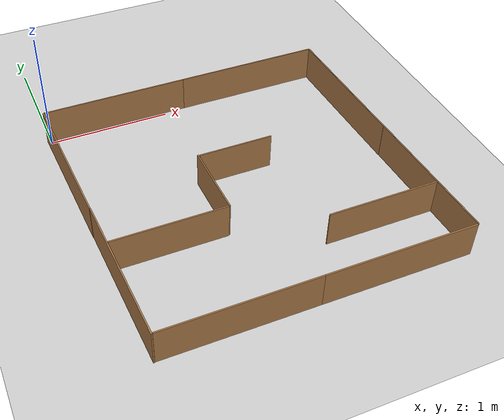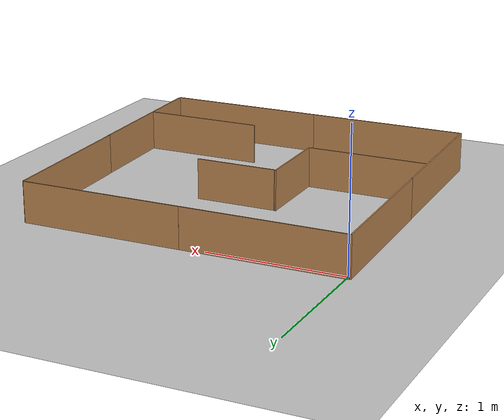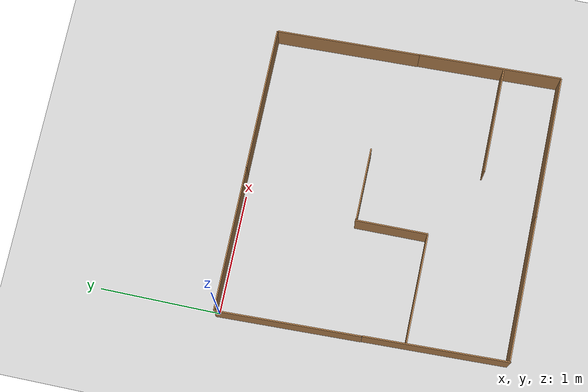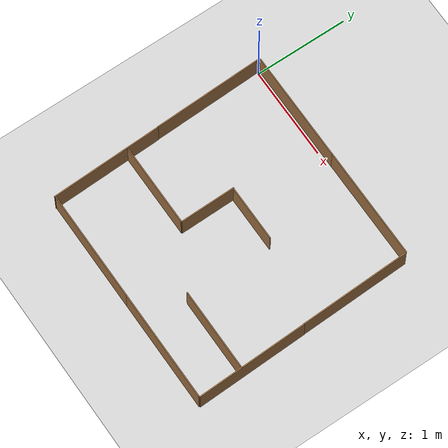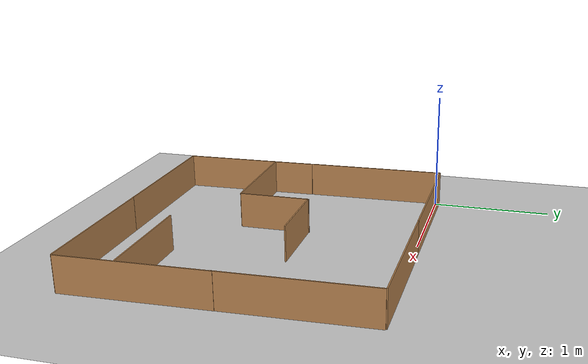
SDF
<sdf version="1.7">
 <world name="default">
  <light name="sun" type="directional">
   <pose>0 0 10 0 -0 0</pose>
   <diffuse>0.8 0.8 0.8 1</diffuse>
   <specular>0.2 0.2 0.2 1</specular>
   <attenuation>
    <range>1000</range>
    <constant>0.9</constant>
    <linear>0.01</linear>
    <quadratic>0.001</quadratic>
   </attenuation>
   <direction>-0.5 0.1 -0.9</direction>
   <spot><inner_angle>0</inner_angle><outer_angle>0</outer_angle><falloff>0</falloff></spot>
  </light>
  <model name="ground_plane">
   <static>1</static>
   <link name="link">
    <collision name="collision">
     <geometry><plane><normal>0 0 1</normal><size>100 100</size></plane></geometry>
     <surface>
      <contact><collide_bitmask>65535</collide_bitmask></contact>
      <friction><ode><mu>100</mu><mu2>50</mu2></ode></friction>
     </surface>
    </collision>
    <visual name="visual">
     <cast_shadows>0</cast_shadows>
     <geometry><plane><normal>0 0 1</normal><size>100 100</size></plane></geometry>
     <material>
      <script><uri>file://media/materials/scripts/gazebo.material</uri><name>Gazebo/Grey</name></script>
     </material>
    </visual>
   </link>
  </model>
  <gravity>0 0 -9.8</gravity>
  <magnetic_field>6e-06 2.3e-05 -4.2e-05</magnetic_field>
  <atmosphere type="adiabatic"/>
  <physics type="ode">
   <max_step_size>0.001</max_step_size>
   <real_time_factor>1</real_time_factor>
   <real_time_update_rate>1000</real_time_update_rate>
  </physics>
  <scene><ambient>0.4 0.4 0.4 1</ambient><background>0.7 0.7 0.7 1</background><shadows>1</shadows></scene>
  <spherical_coordinates>
   <surface_model>EARTH_WGS84</surface_model>
   <latitude_deg>0</latitude_deg>
   <longitude_deg>0</longitude_deg>
   <elevation>0</elevation>
   <heading_deg>0</heading_deg>
  </spherical_coordinates>
  <model name="Fusta12">
   <pose>0.832836 1.03045 0 0 -0 0</pose>
   <link name="Wall_0">
    <collision name="Wall_0_Collision">
     <geometry><box><size>1.2 0.01 0.3</size></box></geometry>
     <pose>0 0 0.15 0 -0 0</pose>
    </collision>
    <visual name="Wall_0_Visual">
     <pose>0 0 0.15 0 -0 0</pose>
     <geometry><box><size>1.2 0.01 0.3</size></box></geometry>
     <material>
      <script><uri>file://media/materials/scripts/gazebo.material</uri><name>Gazebo/Wood</name></script>
      <ambient>1 1 1 1</ambient>
     </material>
     <meta><layer>0</layer></meta>
    </visual>
    <pose>-0.2525 -1.0025 0 0 -0 0</pose>
   </link>
   <static>1</static>
  </model>
  <model name="Fusta12_0">
   <pose>1.00387 -0.793239 0 0 0 -1.53878</pose>
   <link name="Wall_0">
    <collision name="Wall_0_Collision">
     <geometry><box><size>1.2 0.01 0.3</size></box></geometry>
     <pose>0 0 0.15 0 -0 0</pose>
    </collision>
    <visual name="Wall_0_Visual">
     <pose>0 0 0.15 0 -0 0</pose>
     <geometry><box><size>1.2 0.01 0.3</size></box></geometry>
     <material>
      <script><uri>file://media/materials/scripts/gazebo.material</uri><name>Gazebo/Wood</name></script>
      <ambient>1 1 1 1</ambient>
     </material>
     <meta><layer>0</layer></meta>
    </visual>
    <pose>-0.2525 -1.0025 0 0 -0 0</pose>
   </link>
   <static>1</static>
  </model>
  <model name="Fusta12_1">
   <pose>2.03238 1.03104 0 0 -0 0</pose>
   <link name="Wall_0">
    <collision name="Wall_0_Collision">
     <geometry><box><size>1.2 0.01 0.3</size></box></geometry>
     <pose>0 0 0.15 0 -0 0</pose>
    </collision>
    <visual name="Wall_0_Visual">
     <pose>0 0 0.15 0 -0 0</pose>
     <geometry><box><size>1.2 0.01 0.3</size></box></geometry>
     <material>
      <script><uri>file://media/materials/scripts/gazebo.material</uri><name>Gazebo/Wood</name></script>
      <ambient>1 1 1 1</ambient>
     </material>
     <meta><layer>0</layer></meta>
    </visual>
    <pose>-0.2525 -1.0025 0 0 -0 0</pose>
   </link>
   <static>1</static>
  </model>
  <model name="Fusta12_0_clone">
   <pose>1.04499 -1.99449 0 0 0 -1.53878</pose>
   <link name="Wall_0">
    <collision name="Wall_0_Collision">
     <geometry><box><size>1.2 0.01 0.3</size></box></geometry>
     <pose>0 0 0.15 0 -0 0</pose>
    </collision>
    <visual name="Wall_0_Visual">
     <pose>0 0 0.15 0 -0 0</pose>
     <geometry><box><size>1.2 0.01 0.3</size></box></geometry>
     <material>
      <script><uri>file://media/materials/scripts/gazebo.material</uri><name>Gazebo/Wood</name></script>
      <ambient>1 1 1 1</ambient>
     </material>
     <meta><layer>0</layer></meta>
    </visual>
    <pose>-0.2525 -1.0025 0 0 -0 0</pose>
   </link>
   <static>1</static>
  </model>
  <model name="Fusta12_0_clone_0">
   <pose>3.41257 -0.794934 0 0 0 -1.53878</pose>
   <link name="Wall_0">
    <collision name="Wall_0_Collision">
     <geometry><box><size>1.2 0.01 0.3</size></box></geometry>
     <pose>0 0 0.15 0 -0 0</pose>
    </collision>
    <visual name="Wall_0_Visual">
     <pose>0 0 0.15 0 -0 0</pose>
     <geometry><box><size>1.2 0.01 0.3</size></box></geometry>
     <material>
      <script><uri>file://media/materials/scripts/gazebo.material</uri><name>Gazebo/Wood</name></script>
      <ambient>1 1 1 1</ambient>
     </material>
     <meta><layer>0</layer></meta>
    </visual>
    <pose>-0.2525 -1.0025 0 0 -0 0</pose>
   </link>
   <static>1</static>
  </model>
  <model name="Fusta12_0_clone_1">
   <pose>3.45254 -1.98209 0 0 0 -1.53878</pose>
   <link name="Wall_0">
    <collision name="Wall_0_Collision">
     <geometry><box><size>1.2 0.01 0.3</size></box></geometry>
     <pose>0 0 0.15 0 -0 0</pose>
    </collision>
    <visual name="Wall_0_Visual">
     <pose>0 0 0.15 0 -0 0</pose>
     <geometry><box><size>1.2 0.01 0.3</size></box></geometry>
     <material>
      <script><uri>file://media/materials/scripts/gazebo.material</uri><name>Gazebo/Wood</name></script>
      <ambient>1 1 1 1</ambient>
     </material>
     <meta><layer>0</layer></meta>
    </visual>
    <pose>-0.2525 -1.0025 0 0 -0 0</pose>
   </link>
   <static>1</static>
  </model>
  <model name="Fusta12_clone">
   <pose>2.10915 -1.36317 0 0 -0 0</pose>
   <link name="Wall_0">
    <collision name="Wall_0_Collision">
     <geometry><box><size>1.2 0.01 0.3</size></box></geometry>
     <pose>0 0 0.15 0 -0 0</pose>
    </collision>
    <visual name="Wall_0_Visual">
     <pose>0 0 0.15 0 -0 0</pose>
     <geometry><box><size>1.2 0.01 0.3</size></box></geometry>
     <material>
      <script><uri>file://media/materials/scripts/gazebo.material</uri><name>Gazebo/Wood</name></script>
      <ambient>1 1 1 1</ambient>
     </material>
     <meta><layer>0</layer></meta>
    </visual>
    <pose>-0.2525 -1.0025 0 0 -0 0</pose>
   </link>
   <static>1</static>
  </model>
  <model name="Fusta12_clone_0">
   <pose>0.912903 -1.36304 0 0 -0 0</pose>
   <link name="Wall_0">
    <collision name="Wall_0_Collision">
     <geometry><box><size>1.2 0.01 0.3</size></box></geometry>
     <pose>0 0 0.15 0 -0 0</pose>
    </collision>
    <visual name="Wall_0_Visual">
     <pose>0 0 0.15 0 -0 0</pose>
     <geometry><box><size>1.2 0.01 0.3</size></box></geometry>
     <material>
      <script><uri>file://media/materials/scripts/gazebo.material</uri><name>Gazebo/Wood</name></script>
      <ambient>1 1 1 1</ambient>
     </material>
     <meta><layer>0</layer></meta>
    </visual>
    <pose>-0.2525 -1.0025 0 0 -0 0</pose>
   </link>
   <static>1</static>
  </model>
  <model name="Fusta09">
   <pose>0.526767 -0.464527 0 0 -0 0</pose>
   <link name="Wall_2">
    <collision name="Wall_2_Collision">
     <geometry><box><size>0.9 0.01 0.3</size></box></geometry>
     <pose>0 0 0.15 0 -0 0</pose>
    </collision>
    <visual name="Wall_2_Visual">
     <pose>0 0 0.15 0 -0 0</pose>
     <geometry><box><size>0.9 0.01 0.3</size></box></geometry>
     <material>
      <script><uri>file://media/materials/scripts/gazebo.material</uri><name>Gazebo/Wood</name></script>
      <ambient>1 1 1 1</ambient>
     </material>
     <meta><layer>0</layer></meta>
    </visual>
    <pose>-0.0425 -1.0675 0 0 -0 0</pose>
   </link>
   <static>1</static>
  </model>
  <model name="Fusta06">
   <pose>-0.093999 -1.00492 0 0 -0 1.58204</pose>
   <link name="Wall_4">
    <collision name="Wall_4_Collision">
     <geometry><box><size>0.6 0.01 0.3</size></box></geometry>
     <pose>0 0 0.15 0 -0 0</pose>
    </collision>
    <visual name="Wall_4_Visual">
     <pose>0 0 0.15 0 -0 0</pose>
     <geometry><box><size>0.6 0.01 0.3</size></box></geometry>
     <material>
      <script><uri>file://media/materials/scripts/gazebo.material</uri><name>Gazebo/Wood</name></script>
      <ambient>1 1 1 1</ambient>
     </material>
     <meta><layer>0</layer></meta>
    </visual>
    <pose>-0.2375 -1.0275 0 0 -0 0</pose>
   </link>
   <static>1</static>
  </model>
  <model name="Fusta06_0">
   <pose>1.48261 0.087801 0 0 -0 0</pose>
   <link name="Wall_4">
    <collision name="Wall_4_Collision">
     <geometry><box><size>0.6 0.01 0.3</size></box></geometry>
     <pose>0 0 0.15 0 -0 0</pose>
    </collision>
    <visual name="Wall_4_Visual">
     <pose>0 0 0.15 0 -0 0</pose>
     <geometry><box><size>0.6 0.01 0.3</size></box></geometry>
     <material>
      <script><uri>file://media/materials/scripts/gazebo.material</uri><name>Gazebo/Wood</name></script>
      <ambient>1 1 1 1</ambient>
     </material>
     <meta><layer>0</layer></meta>
    </visual>
    <pose>-0.2375 -1.0275 0 0 -0 0</pose>
   </link>
   <static>1</static>
  </model>
  <model name="Fusta09_0">
   <pose>2.04319 -0.817212 0 0 -0 0</pose>
   <link name="Wall_2">
    <collision name="Wall_2_Collision">
     <geometry><box><size>0.9 0.01 0.3</size></box></geometry>
     <pose>0 0 0.15 0 -0 0</pose>
    </collision>
    <visual name="Wall_2_Visual">
     <pose>0 0 0.15 0 -0 0</pose>
     <geometry><box><size>0.9 0.01 0.3</size></box></geometry>
     <material>
      <script><uri>file://media/materials/scripts/gazebo.material</uri><name>Gazebo/Wood</name></script>
      <ambient>1 1 1 1</ambient>
     </material>
     <meta><layer>0</layer></meta>
    </visual>
    <pose>-0.0425 -1.0675 0 0 -0 0</pose>
   </link>
   <static>1</static>
  </model>
 </world>
</sdf>
